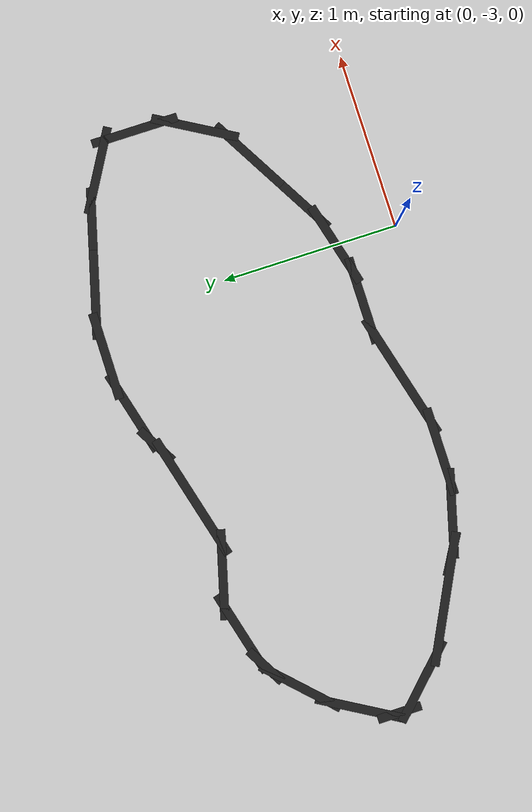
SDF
<?xml version='1.0'?>
<sdf version='1.6'>
  <model name='track_normal'>
    <pose frame=''>-0.807647 -2.04801 0 0 -0 0</pose>
    <link name='Wall_0'>
      <collision name='Wall_0_Collision'>
        <geometry>
          <box>
            <size>0.25 0.05 0.0000005</size>
          </box>
        </geometry>
        <pose frame=''>0 0 0.02 0 -0 0</pose>
      </collision>
      <visual name='Wall_0_Visual'>
        <pose frame=''>0 0 0.02 0 -0 0</pose>
        <geometry>
          <box>
            <size>0.25 0.05 0.0000005</size>
          </box>
        </geometry>
        <material>
          <script>
            <uri>file://media/materials/scripts/gazebo.material</uri>
            <name>Gazebo/Black</name>
          </script>
          <ambient>0 0 0 1</ambient>
        </material>
        <meta>
          <layer>0</layer>
        </meta>
      </visual>
      <pose frame=''>-1.01905 -0.686993 0 0 -0 -0.523599</pose>
    </link>
    <link name='Wall_1'>
      <collision name='Wall_1_Collision'>
        <geometry>
          <box>
            <size>0.5 0.05 0.0000005</size>
          </box>
        </geometry>
        <pose frame=''>0 0 0.02 0 -0 0</pose>
      </collision>
      <visual name='Wall_1_Visual'>
        <pose frame=''>0 0 0.02 0 -0 0</pose>
        <geometry>
          <box>
            <size>0.5 0.05 0.0000005</size>
          </box>
        </geometry>
        <material>
          <script>
            <uri>file://media/materials/scripts/gazebo.material</uri>
            <name>Gazebo/Black</name>
          </script>
          <ambient>0 0 0 1</ambient>
        </material>
        <meta>
          <layer>0</layer>
        </meta>
      </visual>
      <pose frame=''>-0.806714 -0.757287 0 0 -0 -0.261799</pose>
    </link>
    <link name='Wall_10'>
      <collision name='Wall_10_Collision'>
        <geometry>
          <box>
            <size>0.5 0.05 0.0000005</size>
          </box>
        </geometry>
        <pose frame=''>0 0 0.02 0 -0 0</pose>
      </collision>
      <visual name='Wall_10_Visual'>
        <pose frame=''>0 0 0.02 0 -0 0</pose>
        <geometry>
          <box>
            <size>0.5 0.05 0.0000005</size>
          </box>
        </geometry>
        <material>
          <script>
            <uri>file://media/materials/scripts/gazebo.material</uri>
            <name>Gazebo/Black</name>
          </script>
          <ambient>0 0 0 1</ambient>
        </material>
        <meta>
          <layer>0</layer>
        </meta>
      </visual>
      <pose frame=''>1.60962 0.533907 0 0 -0 2.61799</pose>
    </link>
    <link name='Wall_11'>
      <collision name='Wall_11_Collision'>
        <geometry>
          <box>
            <size>0.5 0.05 0.0000005</size>
          </box>
        </geometry>
        <pose frame=''>0 0 0.02 0 -0 0</pose>
      </collision>
      <visual name='Wall_11_Visual'>
        <pose frame=''>0 0 0.02 0 -0 0</pose>
        <geometry>
          <box>
            <size>0.5 0.05 0.0000005</size>
          </box>
        </geometry>
        <material>
          <script>
            <uri>file://media/materials/scripts/gazebo.material</uri>
            <name>Gazebo/Black</name>
          </script>
          <ambient>0 0 0 1</ambient>
        </material>
        <meta>
          <layer>0</layer>
        </meta>
      </visual>
      <pose frame=''>1.28903 0.6667 0 0 -0 2.87979</pose>
    </link>
    <link name='Wall_12'>
      <collision name='Wall_12_Collision'>
        <geometry>
          <box>
            <size>0.5 0.05 0.0000005</size>
          </box>
        </geometry>
        <pose frame=''>0 0 0.02 0 -0 0</pose>
      </collision>
      <visual name='Wall_12_Visual'>
        <pose frame=''>0 0 0.02 0 -0 0</pose>
        <geometry>
          <box>
            <size>0.5 0.05 0.0000005</size>
          </box>
        </geometry>
        <material>
          <script>
            <uri>file://media/materials/scripts/gazebo.material</uri>
            <name>Gazebo/Black</name>
          </script>
          <ambient>0 0 0 1</ambient>
        </material>
        <meta>
          <layer>0</layer>
        </meta>
      </visual>
      <pose frame=''>0.950951 0.757287 0 0 -0 2.87979</pose>
    </link>
    <link name='Wall_13'>
      <collision name='Wall_13_Collision'>
        <geometry>
          <box>
            <size>0.5 0.05 0.0000005</size>
          </box>
        </geometry>
        <pose frame=''>0 0 0.02 0 -0 0</pose>
      </collision>
      <visual name='Wall_13_Visual'>
        <pose frame=''>0 0 0.02 0 -0 0</pose>
        <geometry>
          <box>
            <size>0.5 0.05 0.0000005</size>
          </box>
        </geometry>
        <material>
          <script>
            <uri>file://media/materials/scripts/gazebo.material</uri>
            <name>Gazebo/Black</name>
          </script>
          <ambient>0 0 0 1</ambient>
        </material>
        <meta>
          <layer>0</layer>
        </meta>
      </visual>
      <pose frame=''>0.606914 0.80258 0 0 -0 3.14159</pose>
    </link>
    <link name='Wall_14'>
      <collision name='Wall_14_Collision'>
        <geometry>
          <box>
            <size>0.5 0.05 0.0000005</size>
          </box>
        </geometry>
        <pose frame=''>0 0 0.02 0 -0 0</pose>
      </collision>
      <visual name='Wall_14_Visual'>
        <pose frame=''>0 0 0.02 0 -0 0</pose>
        <geometry>
          <box>
            <size>0.5 0.05 0.0000005</size>
          </box>
        </geometry>
        <material>
          <script>
            <uri>file://media/materials/scripts/gazebo.material</uri>
            <name>Gazebo/Black</name>
          </script>
          <ambient>0 0 0 1</ambient>
        </material>
        <meta>
          <layer>0</layer>
        </meta>
      </visual>
      <pose frame=''>0.262877 0.757287 0 0 -0 -2.87979</pose>
    </link>
    <link name='Wall_15'>
      <collision name='Wall_15_Collision'>
        <geometry>
          <box>
            <size>0.25 0.05 0.0000005</size>
          </box>
        </geometry>
        <pose frame=''>0 0 0.02 0 -0 0</pose>
      </collision>
      <visual name='Wall_15_Visual'>
        <pose frame=''>0 0 0.02 0 -0 0</pose>
        <geometry>
          <box>
            <size>0.25 0.05 0.0000005</size>
          </box>
        </geometry>
        <material>
          <script>
            <uri>file://media/materials/scripts/gazebo.material</uri>
            <name>Gazebo/Black</name>
          </script>
          <ambient>0 0 0 1</ambient>
        </material>
        <meta>
          <layer>0</layer>
        </meta>
      </visual>
      <pose frame=''>0.050538 0.686993 0 0 -0 -2.61799</pose>
    </link>
    <link name='Wall_16'>
      <collision name='Wall_16_Collision'>
        <geometry>
          <box>
            <size>0.75 0.05 0.0000005</size>
          </box>
        </geometry>
        <pose frame=''>0 0 0.02 0 -0 0</pose>
      </collision>
      <visual name='Wall_16_Visual'>
        <pose frame=''>0 0 0.02 0 -0 0</pose>
        <geometry>
          <box>
            <size>0.75 0.05 0.0000005</size>
          </box>
        </geometry>
        <material>
          <script>
            <uri>file://media/materials/scripts/gazebo.material</uri>
            <name>Gazebo/Black</name>
          </script>
          <ambient>0 0 0 1</ambient>
        </material>
        <meta>
          <layer>0</layer>
        </meta>
      </visual>
      <pose frame=''>-0.282541 0.584348 0 0 -0 -2.87979</pose>
    </link>
    <link name='Wall_17'>
      <collision name='Wall_17_Collision'>
        <geometry>
          <box>
            <size>0.5 0.05 0.0000005</size>
          </box>
        </geometry>
        <pose frame=''>0 0 0.02 0 -0 0</pose>
      </collision>
      <visual name='Wall_17_Visual'>
        <pose frame=''>0 0 0.02 0 -0 0</pose>
        <geometry>
          <box>
            <size>0.5 0.05 0.0000005</size>
          </box>
        </geometry>
        <material>
          <script>
            <uri>file://media/materials/scripts/gazebo.material</uri>
            <name>Gazebo/Black</name>
          </script>
          <ambient>0 0 0 1</ambient>
        </material>
        <meta>
          <layer>0</layer>
        </meta>
      </visual>
      <pose frame=''>-0.741356 0.551995 0 0 -0 2.87979</pose>
    </link>
    <link name='Wall_18'>
      <collision name='Wall_18_Collision'>
        <geometry>
          <box>
            <size>0.5 0.05 0.0000005</size>
          </box>
        </geometry>
        <pose frame=''>0 0 0.02 0 -0 0</pose>
      </collision>
      <visual name='Wall_18_Visual'>
        <pose frame=''>0 0 0.02 0 -0 0</pose>
        <geometry>
          <box>
            <size>0.5 0.05 0.0000005</size>
          </box>
        </geometry>
        <material>
          <script>
            <uri>file://media/materials/scripts/gazebo.material</uri>
            <name>Gazebo/Black</name>
          </script>
          <ambient>0 0 0 1</ambient>
        </material>
        <meta>
          <layer>0</layer>
        </meta>
      </visual>
      <pose frame=''>-1.07943 0.551995 0 0 -0 -2.87979</pose>
    </link>
    <link name='Wall_19'>
      <collision name='Wall_19_Collision'>
        <geometry>
          <box>
            <size>0.25 0.05 0.0000005</size>
          </box>
        </geometry>
        <pose frame=''>0 0 0.02 0 -0 0</pose>
      </collision>
      <visual name='Wall_19_Visual'>
        <pose frame=''>0 0 0.02 0 -0 0</pose>
        <geometry>
          <box>
            <size>0.25 0.05 0.0000005</size>
          </box>
        </geometry>
        <material>
          <script>
            <uri>file://media/materials/scripts/gazebo.material</uri>
            <name>Gazebo/Black</name>
          </script>
          <ambient>0 0 0 1</ambient>
        </material>
        <meta>
          <layer>0</layer>
        </meta>
      </visual>
      <pose frame=''>-1.29177 0.481702 0 0 -0 -2.61799</pose>
    </link>
    <link name='Wall_2'>
      <collision name='Wall_2_Collision'>
        <geometry>
          <box>
            <size>0.5 0.05 0.0000005</size>
          </box>
        </geometry>
        <pose frame=''>0 0 0.02 0 -0 0</pose>
      </collision>
      <visual name='Wall_2_Visual'>
        <pose frame=''>0 0 0.02 0 -0 0</pose>
        <geometry>
          <box>
            <size>0.5 0.05 0.0000005</size>
          </box>
        </geometry>
        <material>
          <script>
            <uri>file://media/materials/scripts/gazebo.material</uri>
            <name>Gazebo/Black</name>
          </script>
          <ambient>0 0 0 1</ambient>
        </material>
        <meta>
          <layer>0</layer>
        </meta>
      </visual>
      <pose frame=''>-0.462677 -0.80258 0 0 -0 0</pose>
    </link>
    <link name='Wall_20'>
      <collision name='Wall_20_Collision'>
        <geometry>
          <box>
            <size>0.5 0.05 0.0000005</size>
          </box>
        </geometry>
        <pose frame=''>0 0 0.02 0 -0 0</pose>
      </collision>
      <visual name='Wall_20_Visual'>
        <pose frame=''>0 0 0.02 0 -0 0</pose>
        <geometry>
          <box>
            <size>0.5 0.05 0.0000005</size>
          </box>
        </geometry>
        <material>
          <script>
            <uri>file://media/materials/scripts/gazebo.material</uri>
            <name>Gazebo/Black</name>
          </script>
          <ambient>0 0 0 1</ambient>
        </material>
        <meta>
          <layer>0</layer>
        </meta>
      </visual>
      <pose frame=''>-1.45881 0.332958 0 0 -0 -2.35619</pose>
    </link>
    <link name='Wall_21'>
      <collision name='Wall_21_Collision'>
        <geometry>
          <box>
            <size>0.5 0.05 0.0000005</size>
          </box>
        </geometry>
        <pose frame=''>0 0 0.02 0 -0 0</pose>
      </collision>
      <visual name='Wall_21_Visual'>
        <pose frame=''>0 0 0.02 0 -0 0</pose>
        <geometry>
          <box>
            <size>0.5 0.05 0.0000005</size>
          </box>
        </geometry>
        <material>
          <script>
            <uri>file://media/materials/scripts/gazebo.material</uri>
            <name>Gazebo/Black</name>
          </script>
          <ambient>0 0 0 1</ambient>
        </material>
        <meta>
          <layer>0</layer>
        </meta>
      </visual>
      <pose frame=''>-1.67006 0.05766 0 0 -0 -2.0944</pose>
    </link>
    <link name='Wall_22'>
      <collision name='Wall_22_Collision'>
        <geometry>
          <box>
            <size>0.25 0.05 0.0000005</size>
          </box>
        </geometry>
        <pose frame=''>0 0 0.02 0 -0 0</pose>
      </collision>
      <visual name='Wall_22_Visual'>
        <pose frame=''>0 0 0.02 0 -0 0</pose>
        <geometry>
          <box>
            <size>0.25 0.05 0.0000005</size>
          </box>
        </geometry>
        <material>
          <script>
            <uri>file://media/materials/scripts/gazebo.material</uri>
            <name>Gazebo/Black</name>
          </script>
          <ambient>0 0 0 1</ambient>
        </material>
        <meta>
          <layer>0</layer>
        </meta>
      </visual>
      <pose frame=''>-1.75756 -0.143894 0 0 -0 -1.5708</pose>
    </link>
    <link name='Wall_23'>
      <collision name='Wall_23_Collision'>
        <geometry>
          <box>
            <size>0.5 0.05 0.0000005</size>
          </box>
        </geometry>
        <pose frame=''>0 0 0.02 0 -0 0</pose>
      </collision>
      <visual name='Wall_23_Visual'>
        <pose frame=''>0 0 0.02 0 -0 0</pose>
        <geometry>
          <box>
            <size>0.5 0.05 0.0000005</size>
          </box>
        </geometry>
        <material>
          <script>
            <uri>file://media/materials/scripts/gazebo.material</uri>
            <name>Gazebo/Black</name>
          </script>
          <ambient>0 0 0 1</ambient>
        </material>
        <meta>
          <layer>0</layer>
        </meta>
      </visual>
      <pose frame=''>-1.63381 -0.317638 0 0 -0 -0.785398</pose>
    </link>
    <link name='Wall_24'>
      <collision name='Wall_24_Collision'>
        <geometry>
          <box>
            <size>0.748938 0.05 0.0000005</size>
          </box>
        </geometry>
        <pose frame=''>0 0 0.02 0 -0 0</pose>
      </collision>
      <visual name='Wall_24_Visual'>
        <pose frame=''>0 0 0.02 0 -0 0</pose>
        <geometry>
          <box>
            <size>0.748938 0.05 0.0000005</size>
          </box>
        </geometry>
        <material>
          <script>
            <uri>file://media/materials/scripts/gazebo.material</uri>
            <name>Gazebo/Black</name>
          </script>
          <ambient>0 0 0 1</ambient>
        </material>
        <meta>
          <layer>0</layer>
        </meta>
      </visual>
      <pose frame=''>-1.24291 -0.576688 0 0 -0 -0.468804</pose>
    </link>
    <link name='Wall_3'>
      <collision name='Wall_3_Collision'>
        <geometry>
          <box>
            <size>0.75 0.05 0.0000005</size>
          </box>
        </geometry>
        <pose frame=''>0 0 0.02 0 -0 0</pose>
      </collision>
      <visual name='Wall_3_Visual'>
        <pose frame=''>0 0 0.02 0 -0 0</pose>
        <geometry>
          <box>
            <size>0.75 0.05 0.0000005</size>
          </box>
        </geometry>
        <material>
          <script>
            <uri>file://media/materials/scripts/gazebo.material</uri>
            <name>Gazebo/Black</name>
          </script>
          <ambient>0 0 0 1</ambient>
        </material>
        <meta>
          <layer>0</layer>
        </meta>
      </visual>
      <pose frame=''>0.002101 -0.724934 0 0 -0 0.261799</pose>
    </link>
    <link name='Wall_4'>
      <collision name='Wall_4_Collision'>
        <geometry>
          <box>
            <size>0.5 0.05 0.0000005</size>
          </box>
        </geometry>
        <pose frame=''>0 0 0.02 0 -0 0</pose>
      </collision>
      <visual name='Wall_4_Visual'>
        <pose frame=''>0 0 0.02 0 -0 0</pose>
        <geometry>
          <box>
            <size>0.5 0.05 0.0000005</size>
          </box>
        </geometry>
        <material>
          <script>
            <uri>file://media/materials/scripts/gazebo.material</uri>
            <name>Gazebo/Black</name>
          </script>
          <ambient>0 0 0 1</ambient>
        </material>
        <meta>
          <layer>0</layer>
        </meta>
      </visual>
      <pose frame=''>0.466879 -0.647289 0 0 -0 0</pose>
    </link>
    <link name='Wall_5'>
      <collision name='Wall_5_Collision'>
        <geometry>
          <box>
            <size>0.5 0.05 0.0000005</size>
          </box>
        </geometry>
        <pose frame=''>0 0 0.02 0 -0 0</pose>
      </collision>
      <visual name='Wall_5_Visual'>
        <pose frame=''>0 0 0.02 0 -0 0</pose>
        <geometry>
          <box>
            <size>0.5 0.05 0.0000005</size>
          </box>
        </geometry>
        <material>
          <script>
            <uri>file://media/materials/scripts/gazebo.material</uri>
            <name>Gazebo/Black</name>
          </script>
          <ambient>0 0 0 1</ambient>
        </material>
        <meta>
          <layer>0</layer>
        </meta>
      </visual>
      <pose frame=''>0.810916 -0.601996 0 0 -0 0.261799</pose>
    </link>
    <link name='Wall_6'>
      <collision name='Wall_6_Collision'>
        <geometry>
          <box>
            <size>0.5 0.05 0.0000005</size>
          </box>
        </geometry>
        <pose frame=''>0 0 0.02 0 -0 0</pose>
      </collision>
      <visual name='Wall_6_Visual'>
        <pose frame=''>0 0 0.02 0 -0 0</pose>
        <geometry>
          <box>
            <size>0.5 0.05 0.0000005</size>
          </box>
        </geometry>
        <material>
          <script>
            <uri>file://media/materials/scripts/gazebo.material</uri>
            <name>Gazebo/Black</name>
          </script>
          <ambient>0 0 0 1</ambient>
        </material>
        <meta>
          <layer>0</layer>
        </meta>
      </visual>
      <pose frame=''>1.13151 -0.469202 0 0 -0 0.523599</pose>
    </link>
    <link name='Wall_7'>
      <collision name='Wall_7_Collision'>
        <geometry>
          <box>
            <size>0.5 0.05 0.0000005</size>
          </box>
        </geometry>
        <pose frame=''>0 0 0.02 0 -0 0</pose>
      </collision>
      <visual name='Wall_7_Visual'>
        <pose frame=''>0 0 0.02 0 -0 0</pose>
        <geometry>
          <box>
            <size>0.5 0.05 0.0000005</size>
          </box>
        </geometry>
        <material>
          <script>
            <uri>file://media/materials/scripts/gazebo.material</uri>
            <name>Gazebo/Black</name>
          </script>
          <ambient>0 0 0 1</ambient>
        </material>
        <meta>
          <layer>0</layer>
        </meta>
      </visual>
      <pose frame=''>1.43462 -0.294202 0 0 -0 0.523599</pose>
    </link>
    <link name='Wall_8'>
      <collision name='Wall_8_Collision'>
        <geometry>
          <box>
            <size>0.5 0.05 0.0000005</size>
          </box>
        </geometry>
        <pose frame=''>0 0 0.02 0 -0 0</pose>
      </collision>
      <visual name='Wall_8_Visual'>
        <pose frame=''>0 0 0.02 0 -0 0</pose>
        <geometry>
          <box>
            <size>0.5 0.05 0.0000005</size>
          </box>
        </geometry>
        <material>
          <script>
            <uri>file://media/materials/scripts/gazebo.material</uri>
            <name>Gazebo/Black</name>
          </script>
          <ambient>0 0 0 1</ambient>
        </material>
        <meta>
          <layer>0</layer>
        </meta>
      </visual>
      <pose frame=''>1.67367 -0.055148 0 0 -0 1.0472</pose>
    </link>
    <link name='Wall_9'>
      <collision name='Wall_9_Collision'>
        <geometry>
          <box>
            <size>0.5 0.05 0.0000005</size>
          </box>
        </geometry>
        <pose frame=''>0 0 0.02 0 -0 0</pose>
      </collision>
      <visual name='Wall_9_Visual'>
        <pose frame=''>0 0 0.02 0 -0 0</pose>
        <geometry>
          <box>
            <size>0.5 0.05 0.0000005</size>
          </box>
        </geometry>
        <material>
          <script>
            <uri>file://media/materials/scripts/gazebo.material</uri>
            <name>Gazebo/Black</name>
          </script>
          <ambient>0 0 0 1</ambient>
        </material>
        <meta>
          <layer>0</layer>
        </meta>
      </visual>
      <pose frame=''>1.76117 0.271407 0 0 -0 1.5708</pose>
    </link>
    <static>1</static>
  </model>
</sdf>
